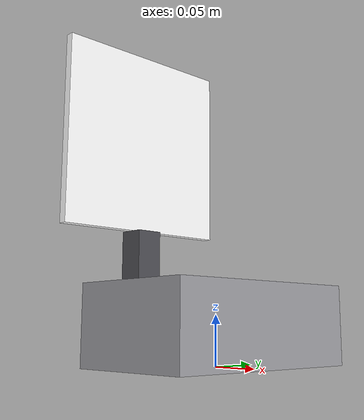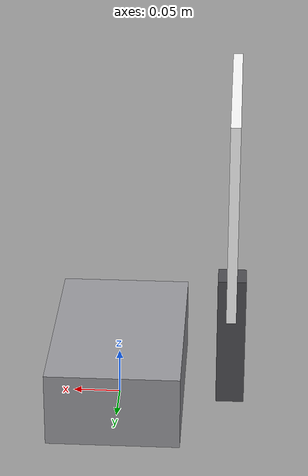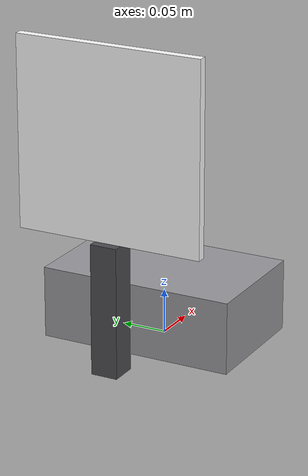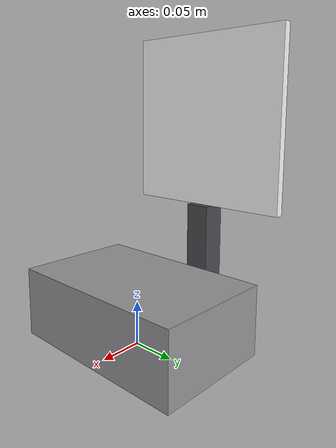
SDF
<?xml version="1.0"?>
<sdf version="1.9">
  <!-- Generated by tools/make_tag_textures.py. Edit that, not this. -->
  <model name="tag_station_0">
    <static>true</static>
    <link name="link">
      <collision name="pedestal_c">
        <pose>0 0 0.040000 0 0 0</pose>
        <geometry><box><size>0.140000 0.220000 0.080000</size></box></geometry>
      </collision>
      <visual name="pedestal_v">
        <pose>0 0 0.040000 0 0 0</pose>
        <geometry><box><size>0.140000 0.220000 0.080000</size></box></geometry>
        <material>
          <ambient>0.6 0.6 0.62 1</ambient>
          <diffuse>0.6 0.6 0.62 1</diffuse>
        </material>
      </visual>
      <collision name="post_c">
        <pose>-0.120000 0 0.072500 0 0 0</pose>
        <geometry><box><size>0.030000 0.030000 0.145000</size></box></geometry>
      </collision>
      <visual name="post_v">
        <pose>-0.120000 0 0.072500 0 0 0</pose>
        <geometry><box><size>0.030000 0.030000 0.145000</size></box></geometry>
        <material>
          <ambient>0.3 0.3 0.32 1</ambient>
          <diffuse>0.3 0.3 0.32 1</diffuse>
        </material>
      </visual>
      <collision name="board_c">
        <pose>-0.120000 0 0.250000 0 0 0</pose>
        <geometry><box><size>0.010000 0.210000 0.210000</size></box></geometry>
      </collision>
      <visual name="board_v">
        <pose>-0.120000 0 0.250000 0 0 0</pose>
        <geometry><box><size>0.010000 0.210000 0.210000</size></box></geometry>
        <material>
          <ambient>1 1 1 1</ambient>
          <diffuse>1 1 1 1</diffuse>
          <pbr><metal>
            <albedo_map>../../worlds/textures/tag_0.png</albedo_map>
            <roughness>0.9</roughness>
            <metalness>0</metalness>
          </metal></pbr>
        </material>
      </visual>
    </link>
  </model>
</sdf>
